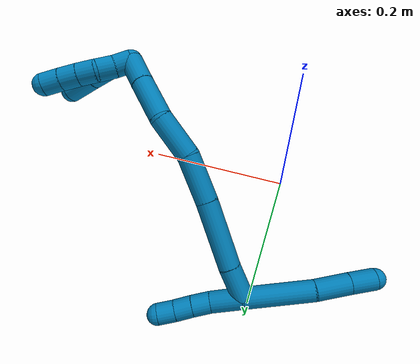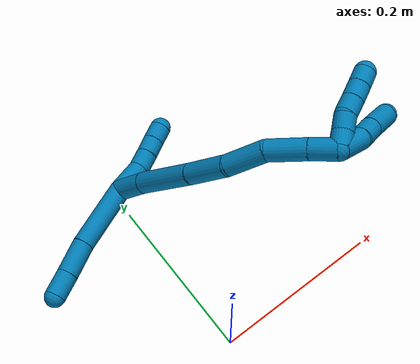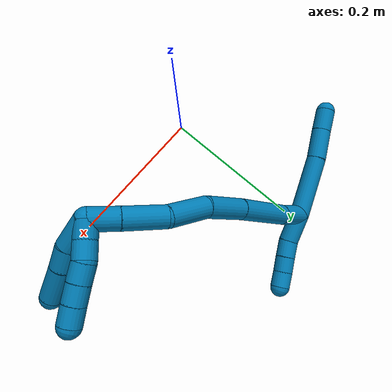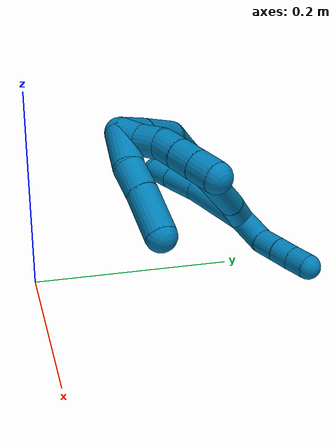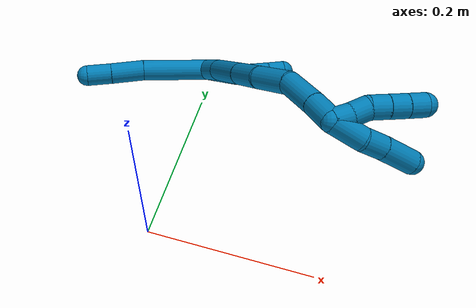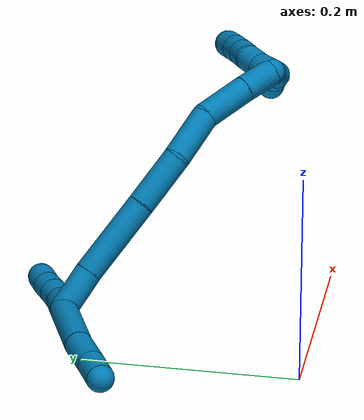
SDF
<sdf version="1.7">
 <world name="default">
  <model name="9">
   <static>0</static>
   <link name="9">
    <collision name="collision-cylinder-e_1_2_8">
     <pose>-0.002788 -0.00082 0.040024 0.020489 -0.069524 -0.000713</pose>
     <geometry><cylinder><radius>0.0125</radius><length>0.08026</length></cylinder></geometry>
     <surface>
      <friction><ode><mu>1.16</mu><mu2>1.16</mu2><slip1>0</slip1><slip2>0</slip2></ode></friction>
      <contact><ode><kp>1e+06</kp><kd>1</kd><max_vel>0</max_vel><min_depth>0.001</min_depth></ode></contact>
     </surface>
    </collision>
    <visual name="visual-cylinder-e_1_2_8">
     <pose>-0.002788 -0.00082 0.040024 0.020489 -0.069524 -0.000713</pose>
     <geometry><cylinder><radius>0.0125</radius><length>0.08026</length></cylinder></geometry>
     <material><ambient>0 0.490196 0.709804 1</ambient></material>
    </visual>
    <collision name="collision-cylinder-e_2_8_9">
     <pose>-0.007126 -0.004213 0.099942 0.128586 -0.077124 -0.004968</pose>
     <geometry><cylinder><radius>0.0125</radius><length>0.040236</length></cylinder></geometry>
     <surface>
      <friction><ode><mu>1.16</mu><mu2>1.16</mu2><slip1>0</slip1><slip2>0</slip2></ode></friction>
      <contact><ode><kp>1e+06</kp><kd>1</kd><max_vel>0</max_vel><min_depth>0.001</min_depth></ode></contact>
     </surface>
    </collision>
    <visual name="visual-cylinder-e_2_8_9">
     <pose>-0.007126 -0.004213 0.099942 0.128586 -0.077124 -0.004968</pose>
     <geometry><cylinder><radius>0.0125</radius><length>0.040236</length></cylinder></geometry>
     <material><ambient>0 0.490196 0.709804 1</ambient></material>
    </visual>
    <collision name="collision-cylinder-e_3_9_6">
     <pose>-0.009815 -0.008326 0.134461 0.104968 -0.077316 -0.004064</pose>
     <geometry><cylinder><radius>0.0125</radius><length>0.029504</length></cylinder></geometry>
     <surface>
      <friction><ode><mu>1.16</mu><mu2>1.16</mu2><slip1>0</slip1><slip2>0</slip2></ode></friction>
      <contact><ode><kp>1e+06</kp><kd>1</kd><max_vel>0</max_vel><min_depth>0.001</min_depth></ode></contact>
     </surface>
    </collision>
    <visual name="visual-cylinder-e_3_9_6">
     <pose>-0.009815 -0.008326 0.134461 0.104968 -0.077316 -0.004064</pose>
     <geometry><cylinder><radius>0.0125</radius><length>0.029504</length></cylinder></geometry>
     <material><ambient>0 0.490196 0.709804 1</ambient></material>
    </visual>
    <collision name="collision-cylinder-e_1_2_10">
     <pose>-0.002028 -0.001541 -0.018772 3.05968 -0.107283 -1.83781</pose>
     <geometry><cylinder><radius>0.0125</radius><length>0.037888</length></cylinder></geometry>
     <surface>
      <friction><ode><mu>1.16</mu><mu2>1.16</mu2><slip1>0</slip1><slip2>0</slip2></ode></friction>
      <contact><ode><kp>1e+06</kp><kd>1</kd><max_vel>0</max_vel><min_depth>0.001</min_depth></ode></contact>
     </surface>
    </collision>
    <visual name="visual-cylinder-e_1_2_10">
     <pose>-0.002028 -0.001541 -0.018772 3.05968 -0.107283 -1.83781</pose>
     <geometry><cylinder><radius>0.0125</radius><length>0.037888</length></cylinder></geometry>
     <material><ambient>0 0.490196 0.709804 1</ambient></material>
    </visual>
    <collision name="collision-cylinder-e_2_10_11">
     <pose>-0.003722 -0.001762 -0.048455 -3.02123 0.030421 -0.494586</pose>
     <geometry><cylinder><radius>0.0125</radius><length>0.021992</length></cylinder></geometry>
     <surface>
      <friction><ode><mu>1.16</mu><mu2>1.16</mu2><slip1>0</slip1><slip2>0</slip2></ode></friction>
      <contact><ode><kp>1e+06</kp><kd>1</kd><max_vel>0</max_vel><min_depth>0.001</min_depth></ode></contact>
     </surface>
    </collision>
    <visual name="visual-cylinder-e_2_10_11">
     <pose>-0.003722 -0.001762 -0.048455 -3.02123 0.030421 -0.494586</pose>
     <geometry><cylinder><radius>0.0125</radius><length>0.021992</length></cylinder></geometry>
     <material><ambient>0 0.490196 0.709804 1</ambient></material>
    </visual>
    <collision name="collision-cylinder-e_3_11_12">
     <pose>-0.003435 0.001016 -0.0693 -2.9958 -0.004689 0.06419</pose>
     <geometry><cylinder><radius>0.0125</radius><length>0.020081</length></cylinder></geometry>
     <surface>
      <friction><ode><mu>1.16</mu><mu2>1.16</mu2><slip1>0</slip1><slip2>0</slip2></ode></friction>
      <contact><ode><kp>1e+06</kp><kd>1</kd><max_vel>0</max_vel><min_depth>0.001</min_depth></ode></contact>
     </surface>
    </collision>
    <visual name="visual-cylinder-e_3_11_12">
     <pose>-0.003435 0.001016 -0.0693 -2.9958 -0.004689 0.06419</pose>
     <geometry><cylinder><radius>0.0125</radius><length>0.020081</length></cylinder></geometry>
     <material><ambient>0 0.490196 0.709804 1</ambient></material>
    </visual>
    <collision name="collision-cylinder-e_4_12_5">
     <pose>-0.002915 0.003678 -0.089165 -3.02103 0.056593 -0.876997</pose>
     <geometry><cylinder><radius>0.0125</radius><length>0.020039</length></cylinder></geometry>
     <surface>
      <friction><ode><mu>1.16</mu><mu2>1.16</mu2><slip1>0</slip1><slip2>0</slip2></ode></friction>
      <contact><ode><kp>1e+06</kp><kd>1</kd><max_vel>0</max_vel><min_depth>0.001</min_depth></ode></contact>
     </surface>
    </collision>
    <visual name="visual-cylinder-e_4_12_5">
     <pose>-0.002915 0.003678 -0.089165 -3.02103 0.056593 -0.876997</pose>
     <geometry><cylinder><radius>0.0125</radius><length>0.020039</length></cylinder></geometry>
     <material><ambient>0 0.490196 0.709804 1</ambient></material>
    </visual>
    <collision name="collision-cylinder-e_1_2_13">
     <pose>0.016963 -0.010099 -0.004717 2.00772 0.989442 1.4059</pose>
     <geometry><cylinder><radius>0.0125</radius><length>0.040594</length></cylinder></geometry>
     <surface>
      <friction><ode><mu>1.16</mu><mu2>1.16</mu2><slip1>0</slip1><slip2>0</slip2></ode></friction>
      <contact><ode><kp>1e+06</kp><kd>1</kd><max_vel>0</max_vel><min_depth>0.001</min_depth></ode></contact>
     </surface>
    </collision>
    <visual name="visual-cylinder-e_1_2_13">
     <pose>0.016963 -0.010099 -0.004717 2.00772 0.989442 1.4059</pose>
     <geometry><cylinder><radius>0.0125</radius><length>0.040594</length></cylinder></geometry>
     <material><ambient>0 0.490196 0.709804 1</ambient></material>
    </visual>
    <collision name="collision-cylinder-e_2_13_14">
     <pose>0.065674 -0.041264 -0.015758 1.86248 0.964935 1.22695</pose>
     <geometry><cylinder><radius>0.0125</radius><length>0.077246</length></cylinder></geometry>
     <surface>
      <friction><ode><mu>1.16</mu><mu2>1.16</mu2><slip1>0</slip1><slip2>0</slip2></ode></friction>
      <contact><ode><kp>1e+06</kp><kd>1</kd><max_vel>0</max_vel><min_depth>0.001</min_depth></ode></contact>
     </surface>
    </collision>
    <visual name="visual-cylinder-e_2_13_14">
     <pose>0.065674 -0.041264 -0.015758 1.86248 0.964935 1.22695</pose>
     <geometry><cylinder><radius>0.0125</radius><length>0.077246</length></cylinder></geometry>
     <material><ambient>0 0.490196 0.709804 1</ambient></material>
    </visual>
    <collision name="collision-cylinder-e_3_14_15">
     <pose>0.119014 -0.076922 -0.027833 1.94614 0.942559 1.28507</pose>
     <geometry><cylinder><radius>0.0125</radius><length>0.053374</length></cylinder></geometry>
     <surface>
      <friction><ode><mu>1.16</mu><mu2>1.16</mu2><slip1>0</slip1><slip2>0</slip2></ode></friction>
      <contact><ode><kp>1e+06</kp><kd>1</kd><max_vel>0</max_vel><min_depth>0.001</min_depth></ode></contact>
     </surface>
    </collision>
    <visual name="visual-cylinder-e_3_14_15">
     <pose>0.119014 -0.076922 -0.027833 1.94614 0.942559 1.28507</pose>
     <geometry><cylinder><radius>0.0125</radius><length>0.053374</length></cylinder></geometry>
     <material><ambient>0 0.490196 0.709804 1</ambient></material>
    </visual>
    <collision name="collision-cylinder-e_4_15_16">
     <pose>0.158271 -0.104508 -0.044735 2.2801 0.800964 1.48892</pose>
     <geometry><cylinder><radius>0.0125</radius><length>0.049205</length></cylinder></geometry>
     <surface>
      <friction><ode><mu>1.16</mu><mu2>1.16</mu2><slip1>0</slip1><slip2>0</slip2></ode></friction>
      <contact><ode><kp>1e+06</kp><kd>1</kd><max_vel>0</max_vel><min_depth>0.001</min_depth></ode></contact>
     </surface>
    </collision>
    <visual name="visual-cylinder-e_4_15_16">
     <pose>0.158271 -0.104508 -0.044735 2.2801 0.800964 1.48892</pose>
     <geometry><cylinder><radius>0.0125</radius><length>0.049205</length></cylinder></geometry>
     <material><ambient>0 0.490196 0.709804 1</ambient></material>
    </visual>
    <collision name="collision-cylinder-e_5_16_17">
     <pose>0.188292 -0.135988 -0.064031 1.98568 0.548971 0.81511</pose>
     <geometry><cylinder><radius>0.0125</radius><length>0.047358</length></cylinder></geometry>
     <surface>
      <friction><ode><mu>1.16</mu><mu2>1.16</mu2><slip1>0</slip1><slip2>0</slip2></ode></friction>
      <contact><ode><kp>1e+06</kp><kd>1</kd><max_vel>0</max_vel><min_depth>0.001</min_depth></ode></contact>
     </surface>
    </collision>
    <visual name="visual-cylinder-e_5_16_17">
     <pose>0.188292 -0.135988 -0.064031 1.98568 0.548971 0.81511</pose>
     <geometry><cylinder><radius>0.0125</radius><length>0.047358</length></cylinder></geometry>
     <material><ambient>0 0.490196 0.709804 1</ambient></material>
    </visual>
    <collision name="collision-cylinder-e_6_17_1">
     <pose>0.208547 -0.167503 -0.077411 1.95305 0.512368 0.739578</pose>
     <geometry><cylinder><radius>0.0125</radius><length>0.032222</length></cylinder></geometry>
     <surface>
      <friction><ode><mu>1.16</mu><mu2>1.16</mu2><slip1>0</slip1><slip2>0</slip2></ode></friction>
      <contact><ode><kp>1e+06</kp><kd>1</kd><max_vel>0</max_vel><min_depth>0.001</min_depth></ode></contact>
     </surface>
    </collision>
    <visual name="visual-cylinder-e_6_17_1">
     <pose>0.208547 -0.167503 -0.077411 1.95305 0.512368 0.739578</pose>
     <geometry><cylinder><radius>0.0125</radius><length>0.032222</length></cylinder></geometry>
     <material><ambient>0 0.490196 0.709804 1</ambient></material>
    </visual>
    <collision name="collision-cylinder-e_1_1_18">
     <pose>0.216398 -0.177186 -0.092072 -2.80038 -0.004733 0.02747</pose>
     <geometry><cylinder><radius>0.0125</radius><length>0.02</length></cylinder></geometry>
     <surface>
      <friction><ode><mu>1.16</mu><mu2>1.16</mu2><slip1>0</slip1><slip2>0</slip2></ode></friction>
      <contact><ode><kp>1e+06</kp><kd>1</kd><max_vel>0</max_vel><min_depth>0.001</min_depth></ode></contact>
     </surface>
    </collision>
    <visual name="visual-cylinder-e_1_1_18">
     <pose>0.216398 -0.177186 -0.092072 -2.80038 -0.004733 0.02747</pose>
     <geometry><cylinder><radius>0.0125</radius><length>0.02</length></cylinder></geometry>
     <material><ambient>0 0.490196 0.709804 1</ambient></material>
    </visual>
    <collision name="collision-cylinder-e_2_18_19">
     <pose>0.217711 -0.170016 -0.110635 -2.74532 0.136469 -0.656183</pose>
     <geometry><cylinder><radius>0.0125</radius><length>0.02</length></cylinder></geometry>
     <surface>
      <friction><ode><mu>1.16</mu><mu2>1.16</mu2><slip1>0</slip1><slip2>0</slip2></ode></friction>
      <contact><ode><kp>1e+06</kp><kd>1</kd><max_vel>0</max_vel><min_depth>0.001</min_depth></ode></contact>
     </surface>
    </collision>
    <visual name="visual-cylinder-e_2_18_19">
     <pose>0.217711 -0.170016 -0.110635 -2.74532 0.136469 -0.656183</pose>
     <geometry><cylinder><radius>0.0125</radius><length>0.02</length></cylinder></geometry>
     <material><ambient>0 0.490196 0.709804 1</ambient></material>
    </visual>
    <collision name="collision-cylinder-e_3_19_20">
     <pose>0.218985 -0.165271 -0.129731 -3.04942 -0.008609 0.186123</pose>
     <geometry><cylinder><radius>0.0125</radius><length>0.02</length></cylinder></geometry>
     <surface>
      <friction><ode><mu>1.16</mu><mu2>1.16</mu2><slip1>0</slip1><slip2>0</slip2></ode></friction>
      <contact><ode><kp>1e+06</kp><kd>1</kd><max_vel>0</max_vel><min_depth>0.001</min_depth></ode></contact>
     </surface>
    </collision>
    <visual name="visual-cylinder-e_3_19_20">
     <pose>0.218985 -0.165271 -0.129731 -3.04942 -0.008609 0.186123</pose>
     <geometry><cylinder><radius>0.0125</radius><length>0.02</length></cylinder></geometry>
     <material><ambient>0 0.490196 0.709804 1</ambient></material>
    </visual>
    <collision name="collision-cylinder-e_4_20_21">
     <pose>0.218534 -0.163259 -0.149622 -3.03216 -0.036476 0.642951</pose>
     <geometry><cylinder><radius>0.0125</radius><length>0.02</length></cylinder></geometry>
     <surface>
      <friction><ode><mu>1.16</mu><mu2>1.16</mu2><slip1>0</slip1><slip2>0</slip2></ode></friction>
      <contact><ode><kp>1e+06</kp><kd>1</kd><max_vel>0</max_vel><min_depth>0.001</min_depth></ode></contact>
     </surface>
    </collision>
    <visual name="visual-cylinder-e_4_20_21">
     <pose>0.218534 -0.163259 -0.149622 -3.03216 -0.036476 0.642951</pose>
     <geometry><cylinder><radius>0.0125</radius><length>0.02</length></cylinder></geometry>
     <material><ambient>0 0.490196 0.709804 1</ambient></material>
    </visual>
    <collision name="collision-cylinder-e_5_21_4">
     <pose>0.217631 -0.160906 -0.169461 -3.01489 -0.053881 0.803399</pose>
     <geometry><cylinder><radius>0.0125</radius><length>0.02</length></cylinder></geometry>
     <surface>
      <friction><ode><mu>1.16</mu><mu2>1.16</mu2><slip1>0</slip1><slip2>0</slip2></ode></friction>
      <contact><ode><kp>1e+06</kp><kd>1</kd><max_vel>0</max_vel><min_depth>0.001</min_depth></ode></contact>
     </surface>
    </collision>
    <visual name="visual-cylinder-e_5_21_4">
     <pose>0.217631 -0.160906 -0.169461 -3.01489 -0.053881 0.803399</pose>
     <geometry><cylinder><radius>0.0125</radius><length>0.02</length></cylinder></geometry>
     <material><ambient>0 0.490196 0.709804 1</ambient></material>
    </visual>
    <collision name="collision-cylinder-e_1_1_22">
     <pose>0.211516 -0.187276 -0.098574 2.74103 -0.277664 -1.20568</pose>
     <geometry><cylinder><radius>0.0125</radius><length>0.035967</length></cylinder></geometry>
     <surface>
      <friction><ode><mu>1.16</mu><mu2>1.16</mu2><slip1>0</slip1><slip2>0</slip2></ode></friction>
      <contact><ode><kp>1e+06</kp><kd>1</kd><max_vel>0</max_vel><min_depth>0.001</min_depth></ode></contact>
     </surface>
    </collision>
    <visual name="visual-cylinder-e_1_1_22">
     <pose>0.211516 -0.187276 -0.098574 2.74103 -0.277664 -1.20568</pose>
     <geometry><cylinder><radius>0.0125</radius><length>0.035967</length></cylinder></geometry>
     <material><ambient>0 0.490196 0.709804 1</ambient></material>
    </visual>
    <collision name="collision-cylinder-e_2_22_23">
     <pose>0.201957 -0.195845 -0.125837 2.982 -0.383193 -2.35956</pose>
     <geometry><cylinder><radius>0.0125</radius><length>0.024762</length></cylinder></geometry>
     <surface>
      <friction><ode><mu>1.16</mu><mu2>1.16</mu2><slip1>0</slip1><slip2>0</slip2></ode></friction>
      <contact><ode><kp>1e+06</kp><kd>1</kd><max_vel>0</max_vel><min_depth>0.001</min_depth></ode></contact>
     </surface>
    </collision>
    <visual name="visual-cylinder-e_2_22_23">
     <pose>0.201957 -0.195845 -0.125837 2.982 -0.383193 -2.35956</pose>
     <geometry><cylinder><radius>0.0125</radius><length>0.024762</length></cylinder></geometry>
     <material><ambient>0 0.490196 0.709804 1</ambient></material>
    </visual>
    <collision name="collision-cylinder-e_3_23_3">
     <pose>0.189498 -0.201602 -0.154746 2.92143 -0.410168 -2.16473</pose>
     <geometry><cylinder><radius>0.0125</radius><length>0.039271</length></cylinder></geometry>
     <surface>
      <friction><ode><mu>1.16</mu><mu2>1.16</mu2><slip1>0</slip1><slip2>0</slip2></ode></friction>
      <contact><ode><kp>1e+06</kp><kd>1</kd><max_vel>0</max_vel><min_depth>0.001</min_depth></ode></contact>
     </surface>
    </collision>
    <visual name="visual-cylinder-e_3_23_3">
     <pose>0.189498 -0.201602 -0.154746 2.92143 -0.410168 -2.16473</pose>
     <geometry><cylinder><radius>0.0125</radius><length>0.039271</length></cylinder></geometry>
     <material><ambient>0 0.490196 0.709804 1</ambient></material>
    </visual>
    <collision name="collision-sphere-3">
     <pose>0.181668 -0.205534 -0.172318 0 -0 0</pose>
     <geometry><sphere><radius>0.0125</radius></sphere></geometry>
     <surface>
      <friction><ode><mu>1.16</mu><mu2>1.16</mu2><slip1>0</slip1><slip2>0</slip2></ode></friction>
      <contact><ode><kp>1e+06</kp><kd>1</kd><max_vel>0</max_vel><min_depth>0.001</min_depth></ode></contact>
     </surface>
    </collision>
    <visual name="visual-sphere-3">
     <pose>0.181668 -0.205534 -0.172318 0 -0 0</pose>
     <geometry><sphere><radius>0.0125</radius></sphere></geometry>
     <material><ambient>0 0.490196 0.709804 1</ambient></material>
    </visual>
    <collision name="collision-sphere-23">
     <pose>0.197328 -0.197669 -0.137174 0 -0 0</pose>
     <geometry><sphere><radius>0.0125</radius></sphere></geometry>
     <surface>
      <friction><ode><mu>1.16</mu><mu2>1.16</mu2><slip1>0</slip1><slip2>0</slip2></ode></friction>
      <contact><ode><kp>1e+06</kp><kd>1</kd><max_vel>0</max_vel><min_depth>0.001</min_depth></ode></contact>
     </surface>
    </collision>
    <visual name="visual-sphere-23">
     <pose>0.197328 -0.197669 -0.137174 0 -0 0</pose>
     <geometry><sphere><radius>0.0125</radius></sphere></geometry>
     <material><ambient>0 0.490196 0.709804 1</ambient></material>
    </visual>
    <collision name="collision-sphere-22">
     <pose>0.206586 -0.19402 -0.1145 0 -0 0</pose>
     <geometry><sphere><radius>0.0125</radius></sphere></geometry>
     <surface>
      <friction><ode><mu>1.16</mu><mu2>1.16</mu2><slip1>0</slip1><slip2>0</slip2></ode></friction>
      <contact><ode><kp>1e+06</kp><kd>1</kd><max_vel>0</max_vel><min_depth>0.001</min_depth></ode></contact>
     </surface>
    </collision>
    <visual name="visual-sphere-22">
     <pose>0.206586 -0.19402 -0.1145 0 -0 0</pose>
     <geometry><sphere><radius>0.0125</radius></sphere></geometry>
     <material><ambient>0 0.490196 0.709804 1</ambient></material>
    </visual>
    <collision name="collision-sphere-4">
     <pose>0.217093 -0.159644 -0.179366 0 -0 0</pose>
     <geometry><sphere><radius>0.0125</radius></sphere></geometry>
     <surface>
      <friction><ode><mu>1.16</mu><mu2>1.16</mu2><slip1>0</slip1><slip2>0</slip2></ode></friction>
      <contact><ode><kp>1e+06</kp><kd>1</kd><max_vel>0</max_vel><min_depth>0.001</min_depth></ode></contact>
     </surface>
    </collision>
    <visual name="visual-sphere-4">
     <pose>0.217093 -0.159644 -0.179366 0 -0 0</pose>
     <geometry><sphere><radius>0.0125</radius></sphere></geometry>
     <material><ambient>0 0.490196 0.709804 1</ambient></material>
    </visual>
    <collision name="collision-sphere-21">
     <pose>0.21817 -0.162168 -0.159555 0 -0 0</pose>
     <geometry><sphere><radius>0.0125</radius></sphere></geometry>
     <surface>
      <friction><ode><mu>1.16</mu><mu2>1.16</mu2><slip1>0</slip1><slip2>0</slip2></ode></friction>
      <contact><ode><kp>1e+06</kp><kd>1</kd><max_vel>0</max_vel><min_depth>0.001</min_depth></ode></contact>
     </surface>
    </collision>
    <visual name="visual-sphere-21">
     <pose>0.21817 -0.162168 -0.159555 0 -0 0</pose>
     <geometry><sphere><radius>0.0125</radius></sphere></geometry>
     <material><ambient>0 0.490196 0.709804 1</ambient></material>
    </visual>
    <collision name="collision-sphere-20">
     <pose>0.218899 -0.164351 -0.139688 0 -0 0</pose>
     <geometry><sphere><radius>0.0125</radius></sphere></geometry>
     <surface>
      <friction><ode><mu>1.16</mu><mu2>1.16</mu2><slip1>0</slip1><slip2>0</slip2></ode></friction>
      <contact><ode><kp>1e+06</kp><kd>1</kd><max_vel>0</max_vel><min_depth>0.001</min_depth></ode></contact>
     </surface>
    </collision>
    <visual name="visual-sphere-20">
     <pose>0.218899 -0.164351 -0.139688 0 -0 0</pose>
     <geometry><sphere><radius>0.0125</radius></sphere></geometry>
     <material><ambient>0 0.490196 0.709804 1</ambient></material>
    </visual>
    <collision name="collision-sphere-11">
     <pose>-0.003388 -0.000443 -0.059366 0 -0 0</pose>
     <geometry><sphere><radius>0.0125</radius></sphere></geometry>
     <surface>
      <friction><ode><mu>1.16</mu><mu2>1.16</mu2><slip1>0</slip1><slip2>0</slip2></ode></friction>
      <contact><ode><kp>1e+06</kp><kd>1</kd><max_vel>0</max_vel><min_depth>0.001</min_depth></ode></contact>
     </surface>
    </collision>
    <visual name="visual-sphere-11">
     <pose>-0.003388 -0.000443 -0.059366 0 -0 0</pose>
     <geometry><sphere><radius>0.0125</radius></sphere></geometry>
     <material><ambient>0 0.490196 0.709804 1</ambient></material>
    </visual>
    <collision name="collision-sphere-10">
     <pose>-0.004057 -0.003082 -0.037544 0 -0 0</pose>
     <geometry><sphere><radius>0.0125</radius></sphere></geometry>
     <surface>
      <friction><ode><mu>1.16</mu><mu2>1.16</mu2><slip1>0</slip1><slip2>0</slip2></ode></friction>
      <contact><ode><kp>1e+06</kp><kd>1</kd><max_vel>0</max_vel><min_depth>0.001</min_depth></ode></contact>
     </surface>
    </collision>
    <visual name="visual-sphere-10">
     <pose>-0.004057 -0.003082 -0.037544 0 -0 0</pose>
     <geometry><sphere><radius>0.0125</radius></sphere></geometry>
     <material><ambient>0 0.490196 0.709804 1</ambient></material>
    </visual>
    <collision name="collision-sphere-6">
     <pose>-0.010954 -0.009867 0.149088 0 -0 0</pose>
     <geometry><sphere><radius>0.0125</radius></sphere></geometry>
     <surface>
      <friction><ode><mu>1.16</mu><mu2>1.16</mu2><slip1>0</slip1><slip2>0</slip2></ode></friction>
      <contact><ode><kp>1e+06</kp><kd>1</kd><max_vel>0</max_vel><min_depth>0.001</min_depth></ode></contact>
     </surface>
    </collision>
    <visual name="visual-sphere-6">
     <pose>-0.010954 -0.009867 0.149088 0 -0 0</pose>
     <geometry><sphere><radius>0.0125</radius></sphere></geometry>
     <material><ambient>0 0.490196 0.709804 1</ambient></material>
    </visual>
    <collision name="collision-sphere-9">
     <pose>-0.008676 -0.006785 0.119834 0 -0 0</pose>
     <geometry><sphere><radius>0.0125</radius></sphere></geometry>
     <surface>
      <friction><ode><mu>1.16</mu><mu2>1.16</mu2><slip1>0</slip1><slip2>0</slip2></ode></friction>
      <contact><ode><kp>1e+06</kp><kd>1</kd><max_vel>0</max_vel><min_depth>0.001</min_depth></ode></contact>
     </surface>
    </collision>
    <visual name="visual-sphere-9">
     <pose>-0.008676 -0.006785 0.119834 0 -0 0</pose>
     <geometry><sphere><radius>0.0125</radius></sphere></geometry>
     <material><ambient>0 0.490196 0.709804 1</ambient></material>
    </visual>
    <collision name="collision-sphere-2">
     <geometry><sphere><radius>0.0125</radius></sphere></geometry>
     <surface>
      <friction><ode><mu>1.16</mu><mu2>1.16</mu2><slip1>0</slip1><slip2>0</slip2></ode></friction>
      <contact><ode><kp>1e+06</kp><kd>1</kd><max_vel>0</max_vel><min_depth>0.001</min_depth></ode></contact>
     </surface>
    </collision>
    <visual name="visual-sphere-2">
     <geometry><sphere><radius>0.0125</radius></sphere></geometry>
     <material><ambient>0 0.490196 0.709804 1</ambient></material>
    </visual>
    <collision name="collision-sphere-19">
     <pose>0.219071 -0.166192 -0.119774 0 -0 0</pose>
     <geometry><sphere><radius>0.0125</radius></sphere></geometry>
     <surface>
      <friction><ode><mu>1.16</mu><mu2>1.16</mu2><slip1>0</slip1><slip2>0</slip2></ode></friction>
      <contact><ode><kp>1e+06</kp><kd>1</kd><max_vel>0</max_vel><min_depth>0.001</min_depth></ode></contact>
     </surface>
    </collision>
    <visual name="visual-sphere-19">
     <pose>0.219071 -0.166192 -0.119774 0 -0 0</pose>
     <geometry><sphere><radius>0.0125</radius></sphere></geometry>
     <material><ambient>0 0.490196 0.709804 1</ambient></material>
    </visual>
    <collision name="collision-sphere-8">
     <pose>-0.005575 -0.00164 0.080049 0 -0 0</pose>
     <geometry><sphere><radius>0.0125</radius></sphere></geometry>
     <surface>
      <friction><ode><mu>1.16</mu><mu2>1.16</mu2><slip1>0</slip1><slip2>0</slip2></ode></friction>
      <contact><ode><kp>1e+06</kp><kd>1</kd><max_vel>0</max_vel><min_depth>0.001</min_depth></ode></contact>
     </surface>
    </collision>
    <visual name="visual-sphere-8">
     <pose>-0.005575 -0.00164 0.080049 0 -0 0</pose>
     <geometry><sphere><radius>0.0125</radius></sphere></geometry>
     <material><ambient>0 0.490196 0.709804 1</ambient></material>
    </visual>
    <collision name="collision-sphere-12">
     <pose>-0.003482 0.002475 -0.079234 0 -0 0</pose>
     <geometry><sphere><radius>0.0125</radius></sphere></geometry>
     <surface>
      <friction><ode><mu>1.16</mu><mu2>1.16</mu2><slip1>0</slip1><slip2>0</slip2></ode></friction>
      <contact><ode><kp>1e+06</kp><kd>1</kd><max_vel>0</max_vel><min_depth>0.001</min_depth></ode></contact>
     </surface>
    </collision>
    <visual name="visual-sphere-12">
     <pose>-0.003482 0.002475 -0.079234 0 -0 0</pose>
     <geometry><sphere><radius>0.0125</radius></sphere></geometry>
     <material><ambient>0 0.490196 0.709804 1</ambient></material>
    </visual>
    <collision name="collision-sphere-5">
     <pose>-0.002349 0.004881 -0.099096 0 -0 0</pose>
     <geometry><sphere><radius>0.0125</radius></sphere></geometry>
     <surface>
      <friction><ode><mu>1.16</mu><mu2>1.16</mu2><slip1>0</slip1><slip2>0</slip2></ode></friction>
      <contact><ode><kp>1e+06</kp><kd>1</kd><max_vel>0</max_vel><min_depth>0.001</min_depth></ode></contact>
     </surface>
    </collision>
    <visual name="visual-sphere-5">
     <pose>-0.002349 0.004881 -0.099096 0 -0 0</pose>
     <geometry><sphere><radius>0.0125</radius></sphere></geometry>
     <material><ambient>0 0.490196 0.709804 1</ambient></material>
    </visual>
    <collision name="collision-sphere-13">
     <pose>0.033925 -0.020198 -0.009433 0 -0 0</pose>
     <geometry><sphere><radius>0.0125</radius></sphere></geometry>
     <surface>
      <friction><ode><mu>1.16</mu><mu2>1.16</mu2><slip1>0</slip1><slip2>0</slip2></ode></friction>
      <contact><ode><kp>1e+06</kp><kd>1</kd><max_vel>0</max_vel><min_depth>0.001</min_depth></ode></contact>
     </surface>
    </collision>
    <visual name="visual-sphere-13">
     <pose>0.033925 -0.020198 -0.009433 0 -0 0</pose>
     <geometry><sphere><radius>0.0125</radius></sphere></geometry>
     <material><ambient>0 0.490196 0.709804 1</ambient></material>
    </visual>
    <collision name="collision-sphere-14">
     <pose>0.097422 -0.062329 -0.022083 0 -0 0</pose>
     <geometry><sphere><radius>0.0125</radius></sphere></geometry>
     <surface>
      <friction><ode><mu>1.16</mu><mu2>1.16</mu2><slip1>0</slip1><slip2>0</slip2></ode></friction>
      <contact><ode><kp>1e+06</kp><kd>1</kd><max_vel>0</max_vel><min_depth>0.001</min_depth></ode></contact>
     </surface>
    </collision>
    <visual name="visual-sphere-14">
     <pose>0.097422 -0.062329 -0.022083 0 -0 0</pose>
     <geometry><sphere><radius>0.0125</radius></sphere></geometry>
     <material><ambient>0 0.490196 0.709804 1</ambient></material>
    </visual>
    <collision name="collision-sphere-15">
     <pose>0.140605 -0.091515 -0.033583 0 -0 0</pose>
     <geometry><sphere><radius>0.0125</radius></sphere></geometry>
     <surface>
      <friction><ode><mu>1.16</mu><mu2>1.16</mu2><slip1>0</slip1><slip2>0</slip2></ode></friction>
      <contact><ode><kp>1e+06</kp><kd>1</kd><max_vel>0</max_vel><min_depth>0.001</min_depth></ode></contact>
     </surface>
    </collision>
    <visual name="visual-sphere-15">
     <pose>0.140605 -0.091515 -0.033583 0 -0 0</pose>
     <geometry><sphere><radius>0.0125</radius></sphere></geometry>
     <material><ambient>0 0.490196 0.709804 1</ambient></material>
    </visual>
    <collision name="collision-sphere-16">
     <pose>0.175936 -0.117502 -0.055888 0 -0 0</pose>
     <geometry><sphere><radius>0.0125</radius></sphere></geometry>
     <surface>
      <friction><ode><mu>1.16</mu><mu2>1.16</mu2><slip1>0</slip1><slip2>0</slip2></ode></friction>
      <contact><ode><kp>1e+06</kp><kd>1</kd><max_vel>0</max_vel><min_depth>0.001</min_depth></ode></contact>
     </surface>
    </collision>
    <visual name="visual-sphere-16">
     <pose>0.175936 -0.117502 -0.055888 0 -0 0</pose>
     <geometry><sphere><radius>0.0125</radius></sphere></geometry>
     <material><ambient>0 0.490196 0.709804 1</ambient></material>
    </visual>
    <collision name="collision-sphere-17">
     <pose>0.200648 -0.154475 -0.072173 0 -0 0</pose>
     <geometry><sphere><radius>0.0125</radius></sphere></geometry>
     <surface>
      <friction><ode><mu>1.16</mu><mu2>1.16</mu2><slip1>0</slip1><slip2>0</slip2></ode></friction>
      <contact><ode><kp>1e+06</kp><kd>1</kd><max_vel>0</max_vel><min_depth>0.001</min_depth></ode></contact>
     </surface>
    </collision>
    <visual name="visual-sphere-17">
     <pose>0.200648 -0.154475 -0.072173 0 -0 0</pose>
     <geometry><sphere><radius>0.0125</radius></sphere></geometry>
     <material><ambient>0 0.490196 0.709804 1</ambient></material>
    </visual>
    <collision name="collision-sphere-1">
     <pose>0.216445 -0.180532 -0.082649 0 -0 0</pose>
     <geometry><sphere><radius>0.0125</radius></sphere></geometry>
     <surface>
      <friction><ode><mu>1.16</mu><mu2>1.16</mu2><slip1>0</slip1><slip2>0</slip2></ode></friction>
      <contact><ode><kp>1e+06</kp><kd>1</kd><max_vel>0</max_vel><min_depth>0.001</min_depth></ode></contact>
     </surface>
    </collision>
    <visual name="visual-sphere-1">
     <pose>0.216445 -0.180532 -0.082649 0 -0 0</pose>
     <geometry><sphere><radius>0.0125</radius></sphere></geometry>
     <material><ambient>0 0.490196 0.709804 1</ambient></material>
    </visual>
    <collision name="collision-sphere-18">
     <pose>0.21635 -0.173839 -0.101495 0 -0 0</pose>
     <geometry><sphere><radius>0.0125</radius></sphere></geometry>
     <surface>
      <friction><ode><mu>1.16</mu><mu2>1.16</mu2><slip1>0</slip1><slip2>0</slip2></ode></friction>
      <contact><ode><kp>1e+06</kp><kd>1</kd><max_vel>0</max_vel><min_depth>0.001</min_depth></ode></contact>
     </surface>
    </collision>
    <visual name="visual-sphere-18">
     <pose>0.21635 -0.173839 -0.101495 0 -0 0</pose>
     <geometry><sphere><radius>0.0125</radius></sphere></geometry>
     <material><ambient>0 0.490196 0.709804 1</ambient></material>
    </visual>
    <inertial>
     <pose>0.101717 -0.081869 -0.040194 0 -0 0</pose>
     <mass>0.75</mass>
     <inertia>
      <ixx>0.00013</ixx>
      <ixy>0</ixy>
      <ixz>0</ixz>
      <iyy>0.000119</iyy>
      <iyz>0</iyz>
      <izz>-1.9e-05</izz>
     </inertia>
    </inertial>
   </link>
   <pose>0.003511 0.216735 0.049306 0.813789 -1.33433 -0.450843</pose>
  </model>
 </world>
</sdf>
